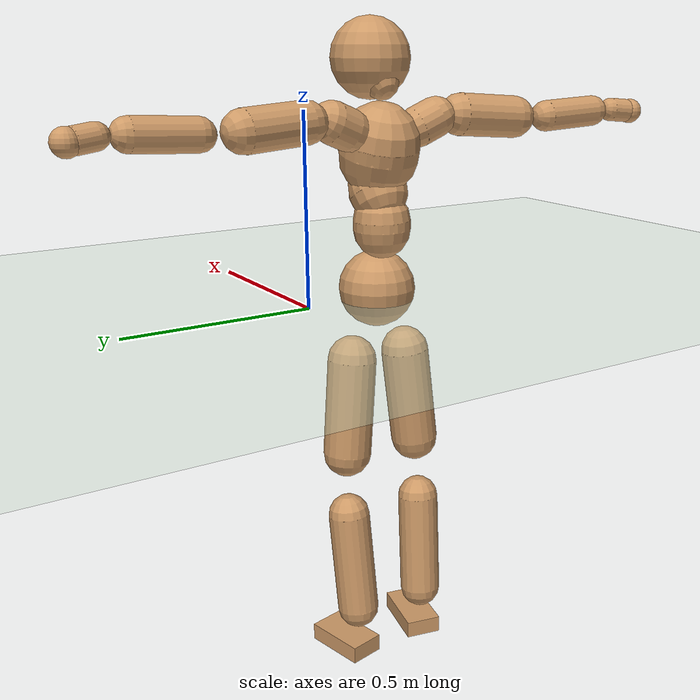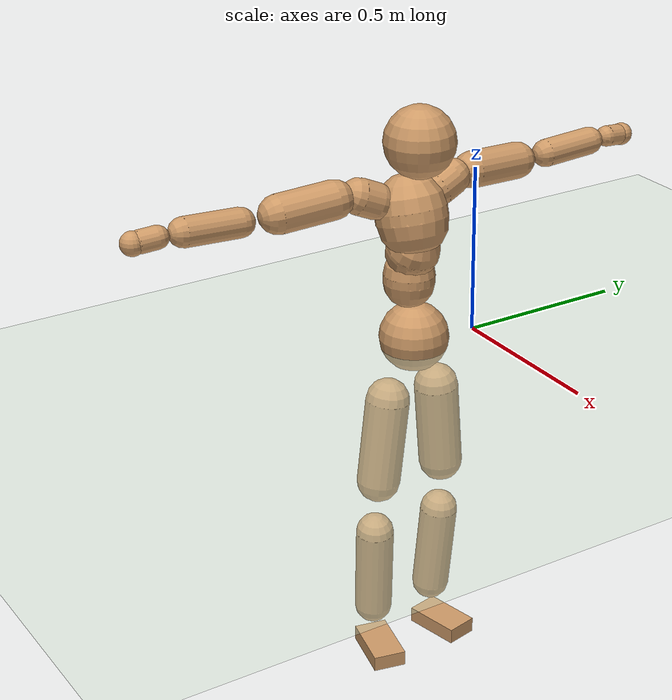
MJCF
<mujoco model="humanoid">
  <compiler coordinate="local" angle="radian"/>
  <default>
    <joint damping="0.0" armature="0.01" stiffness="0.0" limited="true"/>
    <geom conaffinity="1" condim="3" contype="7" margin="0.001" rgba="0.8 0.6 .4 1"/>
  </default>
  <asset>
    <texture type="skybox" builtin="gradient" rgb1=".4 .5 .6" rgb2="0 0 0" width="100" height="100"/>
    <texture builtin="flat" height="1278" mark="cross" markrgb="1 1 1" name="texgeom" random="0.01" rgb1="0.8 0.6 0.4" rgb2="0.8 0.6 0.4" type="cube" width="127"/>
    <texture builtin="checker" height="100" name="texplane" rgb1="0 0 0" rgb2="0.8 0.8 0.8" type="2d" width="100"/>
    <material name="MatPlane" reflectance="0.5" shininess="1" specular="1" texrepeat="60 60" texture="texplane"/>
    <material name="geom" texture="texgeom" texuniform="true"/>
  </asset>
  <worldbody>
    <light cutoff="100" diffuse="1 1 1" dir="-0 0 -1.3" directional="true" exponent="1" pos="0 0 1.3" specular=".1 .1 .1"/>
    <geom conaffinity="1" condim="3" name="floor" pos="0 0 0" rgba="0.8 0.9 0.8 1" size="100 100 .2" type="plane" material="MatPlane"/>
    <body name="Pelvis" pos="0.0005 -0.2069 0.029">
      <freejoint name="Pelvis"/>
      <geom type="sphere" contype="1" conaffinity="1" density="500" size="0.1026" pos="0.0000 0.0000 0.0000" name="Pelvis"/>
      <body name="L_Hip" pos="-0.0094 0.0792 -0.0981">
        <joint name="L_Hip_x" type="hinge" pos="0 0 0" axis="1 0 0" stiffness="800" damping="80" armature="0.02" range="-180.0000 180.0000"/>
        <joint name="L_Hip_y" type="hinge" pos="0 0 0" axis="0 1 0" stiffness="800" damping="80" armature="0.02" range="-180.0000 180.0000"/>
        <joint name="L_Hip_z" type="hinge" pos="0 0 0" axis="0 0 1" stiffness="800" damping="80" armature="0.02" range="-180.0000 180.0000"/>
        <geom type="capsule" contype="1" conaffinity="1" density="500" fromto="-0.0021 0.0077 -0.0875 -0.0084 0.0308 -0.3498" size="0.0659" name="L_Hip"/>
        <body name="L_Knee" pos="-0.0105 0.0385 -0.4373">
          <joint name="L_Knee_x" type="hinge" pos="0 0 0" axis="1 0 0" stiffness="800" damping="80" armature="0.02" range="-180.0000 180.0000"/>
          <joint name="L_Knee_y" type="hinge" pos="0 0 0" axis="0 1 0" stiffness="800" damping="80" armature="0.02" range="-180.0000 180.0000"/>
          <joint name="L_Knee_z" type="hinge" pos="0 0 0" axis="0 0 1" stiffness="800" damping="80" armature="0.02" range="-180.0000 180.0000"/>
          <geom type="capsule" contype="1" conaffinity="1" density="500" fromto="-0.0104 -0.0026 -0.0939 -0.0416 -0.0104 -0.3757" size="0.057" name="L_Knee"/>
          <body name="L_Ankle" pos="-0.052 -0.013 -0.4696">
            <joint name="L_Ankle_x" type="hinge" pos="0 0 0" axis="1 0 0" stiffness="800" damping="80" armature="0.02" range="-180.0000 180.0000"/>
            <joint name="L_Ankle_y" type="hinge" pos="0 0 0" axis="0 1 0" stiffness="800" damping="80" armature="0.02" range="-180.0000 180.0000"/>
            <joint name="L_Ankle_z" type="hinge" pos="0 0 0" axis="0 0 1" stiffness="800" damping="80" armature="0.02" range="-180.0000 180.0000"/>
            <geom type="box" contype="1" conaffinity="1" density="500" pos="0.0632 0.0134 -0.0328" size="0.0883 0.0486 0.024" quat="0.9945 0.0000 0.0000 0.1044" name="L_Ankle"/>
            <body name="L_Toe" pos="0.1264 0.0268 -0.0655">
              <joint name="L_Toe_x" type="hinge" pos="0 0 0" axis="1 0 0" stiffness="500" damping="50" armature="0.02" range="-180.0000 180.0000"/>
              <joint name="L_Toe_y" type="hinge" pos="0 0 0" axis="0 1 0" stiffness="500" damping="50" armature="0.02" range="-180.0000 180.0000"/>
              <joint name="L_Toe_z" type="hinge" pos="0 0 0" axis="0 0 1" stiffness="500" damping="50" armature="0.02" range="-180.0000 180.0000"/>
              <geom type="box" contype="1" conaffinity="1" density="500" pos="0.0000 0.0000 0.0316" size="0.001 0.0024 0.0011" quat="0.9939 0.0000 0.0000 0.1102" name="L_Toe"/>
            </body>
          </body>
        </body>
      </body>
      <body name="R_Hip" pos="-0.0041 -0.0764 -0.0977">
        <joint name="R_Hip_x" type="hinge" pos="0 0 0" axis="1 0 0" stiffness="800" damping="80" armature="0.02" range="-180.0000 180.0000"/>
        <joint name="R_Hip_y" type="hinge" pos="0 0 0" axis="0 1 0" stiffness="800" damping="80" armature="0.02" range="-180.0000 180.0000"/>
        <joint name="R_Hip_z" type="hinge" pos="0 0 0" axis="0 0 1" stiffness="800" damping="80" armature="0.02" range="-180.0000 180.0000"/>
        <geom type="capsule" contype="1" conaffinity="1" density="500" fromto="-0.0026 -0.0095 -0.0887 -0.0102 -0.0379 -0.3547" size="0.065" name="R_Hip"/>
        <body name="R_Knee" pos="-0.0128 -0.0473 -0.4434">
          <joint name="R_Knee_x" type="hinge" pos="0 0 0" axis="1 0 0" stiffness="800" damping="80" armature="0.02" range="-180.0000 180.0000"/>
          <joint name="R_Knee_y" type="hinge" pos="0 0 0" axis="0 1 0" stiffness="800" damping="80" armature="0.02" range="-180.0000 180.0000"/>
          <joint name="R_Knee_z" type="hinge" pos="0 0 0" axis="0 0 1" stiffness="800" damping="80" armature="0.02" range="-180.0000 180.0000"/>
          <geom type="capsule" contype="1" conaffinity="1" density="500" fromto="-0.0098 0.0034 -0.0942 -0.0393 0.0136 -0.3768" size="0.0571" name="R_Knee"/>
          <body name="R_Ankle" pos="-0.0492 0.017 -0.471">
            <joint name="R_Ankle_x" type="hinge" pos="0 0 0" axis="1 0 0" stiffness="800" damping="80" armature="0.02" range="-180.0000 180.0000"/>
            <joint name="R_Ankle_y" type="hinge" pos="0 0 0" axis="0 1 0" stiffness="800" damping="80" armature="0.02" range="-180.0000 180.0000"/>
            <joint name="R_Ankle_z" type="hinge" pos="0 0 0" axis="0 0 1" stiffness="800" damping="80" armature="0.02" range="-180.0000 180.0000"/>
            <geom type="box" contype="1" conaffinity="1" density="500" pos="0.0655 -0.0144 -0.0283" size="0.0913 0.0497 0.0236" quat="0.9941 0.0000 0.0000 -0.1082" name="R_Ankle"/>
            <body name="R_Toe" pos="0.1311 -0.0289 -0.0567">
              <joint name="R_Toe_x" type="hinge" pos="0 0 0" axis="1 0 0" stiffness="500" damping="50" armature="0.02" range="-180.0000 180.0000"/>
              <joint name="R_Toe_y" type="hinge" pos="0 0 0" axis="0 1 0" stiffness="500" damping="50" armature="0.02" range="-180.0000 180.0000"/>
              <joint name="R_Toe_z" type="hinge" pos="0 0 0" axis="0 0 1" stiffness="500" damping="50" armature="0.02" range="-180.0000 180.0000"/>
              <geom type="box" contype="1" conaffinity="1" density="500" pos="0.0000 0.0000 0.0303" size="0.0009 0.0024 0.0013" quat="0.9950 0.0000 0.0000 -0.0995" name="R_Toe"/>
            </body>
          </body>
        </body>
      </body>
      <body name="Torso" pos="-0.0247 -0.0023 0.1121">
        <joint name="Torso_x" type="hinge" pos="0 0 0" axis="1 0 0" stiffness="1000" damping="100" armature="0.02" range="-180.0000 180.0000"/>
        <joint name="Torso_y" type="hinge" pos="0 0 0" axis="0 1 0" stiffness="1000" damping="100" armature="0.02" range="-180.0000 180.0000"/>
        <joint name="Torso_z" type="hinge" pos="0 0 0" axis="0 0 1" stiffness="1000" damping="100" armature="0.02" range="-180.0000 180.0000"/>
        <geom type="capsule" contype="1" conaffinity="1" density="500" fromto="-0.0006 0.0018 0.0743 -0.0004 0.0012 0.0496" size="0.0755" name="Torso"/>
        <body name="Spine" pos="-0.001 0.003 0.1239">
          <joint name="Spine_x" type="hinge" pos="0 0 0" axis="1 0 0" stiffness="1000" damping="100" armature="0.02" range="-180.0000 180.0000"/>
          <joint name="Spine_y" type="hinge" pos="0 0 0" axis="0 1 0" stiffness="1000" damping="100" armature="0.02" range="-180.0000 180.0000"/>
          <joint name="Spine_z" type="hinge" pos="0 0 0" axis="0 0 1" stiffness="1000" damping="100" armature="0.02" range="-180.0000 180.0000"/>
          <geom type="capsule" contype="1" conaffinity="1" density="500" fromto="0.0185 0.0007 0.0310 0.0123 0.0004 0.0206" size="0.0774" name="Spine"/>
          <body name="Chest" pos="0.0308 0.0011 0.0516">
            <joint name="Chest_x" type="hinge" pos="0 0 0" axis="1 0 0" stiffness="1000" damping="100" armature="0.02" range="-180.0000 180.0000"/>
            <joint name="Chest_y" type="hinge" pos="0 0 0" axis="0 1 0" stiffness="1000" damping="100" armature="0.02" range="-180.0000 180.0000"/>
            <joint name="Chest_z" type="hinge" pos="0 0 0" axis="0 0 1" stiffness="1000" damping="100" armature="0.02" range="-180.0000 180.0000"/>
            <geom type="capsule" contype="1" conaffinity="1" density="500" fromto="-0.0261 -0.0011 0.0962 -0.0174 -0.0007 0.0641" size="0.1043" name="Chest"/>
            <body name="Neck" pos="-0.0456 -0.0032 0.2301">
              <joint name="Neck_x" type="hinge" pos="0 0 0" axis="1 0 0" stiffness="500" damping="50" armature="0.02" range="-180.0000 180.0000"/>
              <joint name="Neck_y" type="hinge" pos="0 0 0" axis="0 1 0" stiffness="500" damping="50" armature="0.02" range="-180.0000 180.0000"/>
              <joint name="Neck_z" type="hinge" pos="0 0 0" axis="0 0 1" stiffness="500" damping="50" armature="0.02" range="-180.0000 180.0000"/>
              <geom type="capsule" contype="1" conaffinity="1" density="500" fromto="0.0121 0.0009 0.0147 0.0486 0.0035 0.0588" size="0.0439" name="Neck"/>
              <body name="Head" pos="0.0607 0.0044 0.0735">
                <joint name="Head_x" type="hinge" pos="0 0 0" axis="1 0 0" stiffness="500" damping="50" armature="0.02" range="-180.0000 180.0000"/>
                <joint name="Head_y" type="hinge" pos="0 0 0" axis="0 1 0" stiffness="500" damping="50" armature="0.02" range="-180.0000 180.0000"/>
                <joint name="Head_z" type="hinge" pos="0 0 0" axis="0 0 1" stiffness="500" damping="50" armature="0.02" range="-180.0000 180.0000"/>
                <geom type="sphere" contype="1" conaffinity="1" density="500" size="0.1030" pos="0.0000 0.0000 0.0000" name="Head"/>
              </body>
            </body>
            <body name="L_Thorax" pos="-0.04 0.0814 0.1261">
              <joint name="L_Thorax_x" type="hinge" pos="0 0 0" axis="1 0 0" stiffness="500" damping="50" armature="0.02" range="-180.0000 180.0000"/>
              <joint name="L_Thorax_y" type="hinge" pos="0 0 0" axis="0 1 0" stiffness="500" damping="50" armature="0.02" range="-180.0000 180.0000"/>
              <joint name="L_Thorax_z" type="hinge" pos="0 0 0" axis="0 0 1" stiffness="500" damping="50" armature="0.02" range="-180.0000 180.0000"/>
              <geom type="capsule" contype="1" conaffinity="1" density="500" fromto="-0.0019 0.0174 0.0072 -0.0077 0.0694 0.0288" size="0.054" name="L_Thorax"/>
              <body name="L_Shoulder" pos="-0.0096 0.0868 0.036">
                <joint name="L_Shoulder_x" type="hinge" pos="0 0 0" axis="1 0 0" stiffness="500" damping="50" armature="0.02" range="-720.0000 720.0000"/>
                <joint name="L_Shoulder_y" type="hinge" pos="0 0 0" axis="0 1 0" stiffness="500" damping="50" armature="0.02" range="-720.0000 720.0000"/>
                <joint name="L_Shoulder_z" type="hinge" pos="0 0 0" axis="0 0 1" stiffness="500" damping="50" armature="0.02" range="-720.0000 720.0000"/>
                <geom type="capsule" contype="1" conaffinity="1" density="500" fromto="-0.0061 0.0577 -0.0036 -0.0246 0.2307 -0.0144" size="0.0537" name="L_Shoulder"/>
                <body name="L_Elbow" pos="-0.0307 0.2884 -0.018">
                  <joint name="L_Elbow_x" type="hinge" pos="0 0 0" axis="1 0 0" stiffness="500" damping="50" armature="0.02" range="-720.0000 720.0000"/>
                  <joint name="L_Elbow_y" type="hinge" pos="0 0 0" axis="0 1 0" stiffness="500" damping="50" armature="0.02" range="-720.0000 720.0000"/>
                  <joint name="L_Elbow_z" type="hinge" pos="0 0 0" axis="0 0 1" stiffness="500" damping="50" armature="0.02" range="-720.0000 720.0000"/>
                  <geom type="capsule" contype="1" conaffinity="1" density="500" fromto="-0.0001 0.0533 0.0027 -0.0005 0.2133 0.0108" size="0.0412" name="L_Elbow"/>
                  <body name="L_Wrist" pos="-0.0007 0.2666 0.0135">
                    <joint name="L_Wrist_x" type="hinge" pos="0 0 0" axis="1 0 0" stiffness="300" damping="30" armature="0.02" range="-180.0000 180.0000"/>
                    <joint name="L_Wrist_y" type="hinge" pos="0 0 0" axis="0 1 0" stiffness="300" damping="30" armature="0.02" range="-180.0000 180.0000"/>
                    <joint name="L_Wrist_z" type="hinge" pos="0 0 0" axis="0 0 1" stiffness="300" damping="30" armature="0.02" range="-180.0000 180.0000"/>
                    <geom type="capsule" contype="1" conaffinity="1" density="500" fromto="-0.0028 0.0167 -0.0020 -0.0112 0.0666 -0.0082" size="0.0313" name="L_Wrist"/>
                    <body name="L_Hand" pos="-0.014 0.0833 -0.0102">
                      <joint name="L_Hand_x" type="hinge" pos="0 0 0" axis="1 0 0" stiffness="300" damping="30" armature="0.02" range="-180.0000 180.0000"/>
                      <joint name="L_Hand_y" type="hinge" pos="0 0 0" axis="0 1 0" stiffness="300" damping="30" armature="0.02" range="-180.0000 180.0000"/>
                      <joint name="L_Hand_z" type="hinge" pos="0 0 0" axis="0 0 1" stiffness="300" damping="30" armature="0.02" range="-180.0000 180.0000"/>
                      <geom type="sphere" contype="1" conaffinity="1" density="500" size="0.0335" pos="0.0000 0.0000 0.0000" name="L_Hand"/>
                    </body>
                  </body>
                </body>
              </body>
            </body>
            <body name="R_Thorax" pos="-0.0449 -0.0835 0.1247">
              <joint name="R_Thorax_x" type="hinge" pos="0 0 0" axis="1 0 0" stiffness="500" damping="50" armature="0.02" range="-180.0000 180.0000"/>
              <joint name="R_Thorax_y" type="hinge" pos="0 0 0" axis="0 1 0" stiffness="500" damping="50" armature="0.02" range="-180.0000 180.0000"/>
              <joint name="R_Thorax_z" type="hinge" pos="0 0 0" axis="0 0 1" stiffness="500" damping="50" armature="0.02" range="-180.0000 180.0000"/>
              <geom type="capsule" contype="1" conaffinity="1" density="500" fromto="-0.0019 -0.0178 0.0078 -0.0075 -0.0712 0.0313" size="0.0528" name="R_Thorax"/>
              <body name="R_Shoulder" pos="-0.0093 -0.089 0.0391">
                <joint name="R_Shoulder_x" type="hinge" pos="0 0 0" axis="1 0 0" stiffness="500" damping="50" armature="0.02" range="-720.0000 720.0000"/>
                <joint name="R_Shoulder_y" type="hinge" pos="0 0 0" axis="0 1 0" stiffness="500" damping="50" armature="0.02" range="-720.0000 720.0000"/>
                <joint name="R_Shoulder_z" type="hinge" pos="0 0 0" axis="0 0 1" stiffness="500" damping="50" armature="0.02" range="-720.0000 720.0000"/>
                <geom type="capsule" contype="1" conaffinity="1" density="500" fromto="-0.0051 -0.0560 -0.0041 -0.0206 -0.2240 -0.0165" size="0.0559" name="R_Shoulder"/>
                <body name="R_Elbow" pos="-0.0257 -0.28 -0.0206">
                  <joint name="R_Elbow_x" type="hinge" pos="0 0 0" axis="1 0 0" stiffness="500" damping="50" armature="0.02" range="-720.0000 720.0000"/>
                  <joint name="R_Elbow_y" type="hinge" pos="0 0 0" axis="0 1 0" stiffness="500" damping="50" armature="0.02" range="-720.0000 720.0000"/>
                  <joint name="R_Elbow_z" type="hinge" pos="0 0 0" axis="0 0 1" stiffness="500" damping="50" armature="0.02" range="-720.0000 720.0000"/>
                  <geom type="capsule" contype="1" conaffinity="1" density="500" fromto="-0.0009 -0.0555 0.0025 -0.0037 -0.2220 0.0101" size="0.0421" name="R_Elbow"/>
                  <body name="R_Wrist" pos="-0.0046 -0.2776 0.0126">
                    <joint name="R_Wrist_x" type="hinge" pos="0 0 0" axis="1 0 0" stiffness="300" damping="30" armature="0.02" range="-180.0000 180.0000"/>
                    <joint name="R_Wrist_y" type="hinge" pos="0 0 0" axis="0 1 0" stiffness="300" damping="30" armature="0.02" range="-180.0000 180.0000"/>
                    <joint name="R_Wrist_z" type="hinge" pos="0 0 0" axis="0 0 1" stiffness="300" damping="30" armature="0.02" range="-180.0000 180.0000"/>
                    <geom type="capsule" contype="1" conaffinity="1" density="500" fromto="-0.0022 -0.0170 -0.0016 -0.0089 -0.0680 -0.0062" size="0.0324" name="R_Wrist"/>
                    <body name="R_Hand" pos="-0.0111 -0.085 -0.0078">
                      <joint name="R_Hand_x" type="hinge" pos="0 0 0" axis="1 0 0" stiffness="300" damping="30" armature="0.02" range="-180.0000 180.0000"/>
                      <joint name="R_Hand_y" type="hinge" pos="0 0 0" axis="0 1 0" stiffness="300" damping="30" armature="0.02" range="-180.0000 180.0000"/>
                      <joint name="R_Hand_z" type="hinge" pos="0 0 0" axis="0 0 1" stiffness="300" damping="30" armature="0.02" range="-180.0000 180.0000"/>
                      <geom type="sphere" contype="1" conaffinity="1" density="500" size="0.0341" pos="0.0000 0.0000 0.0000" name="R_Hand"/>
                    </body>
                  </body>
                </body>
              </body>
            </body>
          </body>
        </body>
      </body>
    </body>
  </worldbody>
  <actuator>
    <motor name="L_Hip_x" joint="L_Hip_x" gear="500"/>
    <motor name="L_Hip_y" joint="L_Hip_y" gear="500"/>
    <motor name="L_Hip_z" joint="L_Hip_z" gear="500"/>
    <motor name="L_Knee_x" joint="L_Knee_x" gear="500"/>
    <motor name="L_Knee_y" joint="L_Knee_y" gear="500"/>
    <motor name="L_Knee_z" joint="L_Knee_z" gear="500"/>
    <motor name="L_Ankle_x" joint="L_Ankle_x" gear="500"/>
    <motor name="L_Ankle_y" joint="L_Ankle_y" gear="500"/>
    <motor name="L_Ankle_z" joint="L_Ankle_z" gear="500"/>
    <motor name="L_Toe_x" joint="L_Toe_x" gear="500"/>
    <motor name="L_Toe_y" joint="L_Toe_y" gear="500"/>
    <motor name="L_Toe_z" joint="L_Toe_z" gear="500"/>
    <motor name="R_Hip_x" joint="R_Hip_x" gear="500"/>
    <motor name="R_Hip_y" joint="R_Hip_y" gear="500"/>
    <motor name="R_Hip_z" joint="R_Hip_z" gear="500"/>
    <motor name="R_Knee_x" joint="R_Knee_x" gear="500"/>
    <motor name="R_Knee_y" joint="R_Knee_y" gear="500"/>
    <motor name="R_Knee_z" joint="R_Knee_z" gear="500"/>
    <motor name="R_Ankle_x" joint="R_Ankle_x" gear="500"/>
    <motor name="R_Ankle_y" joint="R_Ankle_y" gear="500"/>
    <motor name="R_Ankle_z" joint="R_Ankle_z" gear="500"/>
    <motor name="R_Toe_x" joint="R_Toe_x" gear="500"/>
    <motor name="R_Toe_y" joint="R_Toe_y" gear="500"/>
    <motor name="R_Toe_z" joint="R_Toe_z" gear="500"/>
    <motor name="Torso_x" joint="Torso_x" gear="500"/>
    <motor name="Torso_y" joint="Torso_y" gear="500"/>
    <motor name="Torso_z" joint="Torso_z" gear="500"/>
    <motor name="Spine_x" joint="Spine_x" gear="500"/>
    <motor name="Spine_y" joint="Spine_y" gear="500"/>
    <motor name="Spine_z" joint="Spine_z" gear="500"/>
    <motor name="Chest_x" joint="Chest_x" gear="500"/>
    <motor name="Chest_y" joint="Chest_y" gear="500"/>
    <motor name="Chest_z" joint="Chest_z" gear="500"/>
    <motor name="Neck_x" joint="Neck_x" gear="500"/>
    <motor name="Neck_y" joint="Neck_y" gear="500"/>
    <motor name="Neck_z" joint="Neck_z" gear="500"/>
    <motor name="Head_x" joint="Head_x" gear="500"/>
    <motor name="Head_y" joint="Head_y" gear="500"/>
    <motor name="Head_z" joint="Head_z" gear="500"/>
    <motor name="L_Thorax_x" joint="L_Thorax_x" gear="500"/>
    <motor name="L_Thorax_y" joint="L_Thorax_y" gear="500"/>
    <motor name="L_Thorax_z" joint="L_Thorax_z" gear="500"/>
    <motor name="L_Shoulder_x" joint="L_Shoulder_x" gear="500"/>
    <motor name="L_Shoulder_y" joint="L_Shoulder_y" gear="500"/>
    <motor name="L_Shoulder_z" joint="L_Shoulder_z" gear="500"/>
    <motor name="L_Elbow_x" joint="L_Elbow_x" gear="500"/>
    <motor name="L_Elbow_y" joint="L_Elbow_y" gear="500"/>
    <motor name="L_Elbow_z" joint="L_Elbow_z" gear="500"/>
    <motor name="L_Wrist_x" joint="L_Wrist_x" gear="500"/>
    <motor name="L_Wrist_y" joint="L_Wrist_y" gear="500"/>
    <motor name="L_Wrist_z" joint="L_Wrist_z" gear="500"/>
    <motor name="L_Hand_x" joint="L_Hand_x" gear="500"/>
    <motor name="L_Hand_y" joint="L_Hand_y" gear="500"/>
    <motor name="L_Hand_z" joint="L_Hand_z" gear="500"/>
    <motor name="R_Thorax_x" joint="R_Thorax_x" gear="500"/>
    <motor name="R_Thorax_y" joint="R_Thorax_y" gear="500"/>
    <motor name="R_Thorax_z" joint="R_Thorax_z" gear="500"/>
    <motor name="R_Shoulder_x" joint="R_Shoulder_x" gear="500"/>
    <motor name="R_Shoulder_y" joint="R_Shoulder_y" gear="500"/>
    <motor name="R_Shoulder_z" joint="R_Shoulder_z" gear="500"/>
    <motor name="R_Elbow_x" joint="R_Elbow_x" gear="500"/>
    <motor name="R_Elbow_y" joint="R_Elbow_y" gear="500"/>
    <motor name="R_Elbow_z" joint="R_Elbow_z" gear="500"/>
    <motor name="R_Wrist_x" joint="R_Wrist_x" gear="500"/>
    <motor name="R_Wrist_y" joint="R_Wrist_y" gear="500"/>
    <motor name="R_Wrist_z" joint="R_Wrist_z" gear="500"/>
    <motor name="R_Hand_x" joint="R_Hand_x" gear="500"/>
    <motor name="R_Hand_y" joint="R_Hand_y" gear="500"/>
    <motor name="R_Hand_z" joint="R_Hand_z" gear="500"/>
  </actuator>
  <contact>
    <exclude body1="Torso" body2="Chest"/>
    <exclude body1="Head" body2="Chest"/>
    <exclude body1="R_Knee" body2="R_Toe"/>
    <exclude body1="R_Knee" body2="L_Ankle"/>
    <exclude body1="R_Knee" body2="L_Toe"/>
    <exclude body1="L_Knee" body2="L_Toe"/>
    <exclude body1="L_Knee" body2="R_Ankle"/>
    <exclude body1="L_Knee" body2="R_Toe"/>
    <exclude body1="L_Shoulder" body2="Chest"/>
    <exclude body1="R_Shoulder" body2="Chest"/>
  </contact>
  <sensor/>
  <size njmax="700" nconmax="700"/>
</mujoco>
